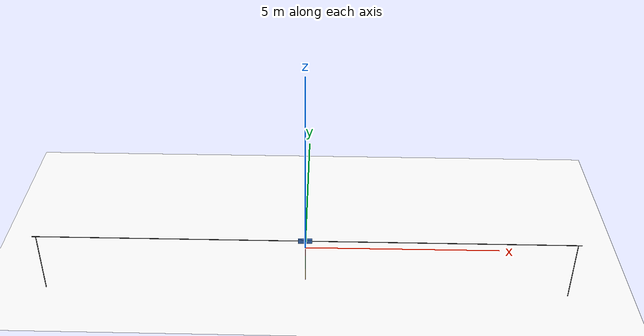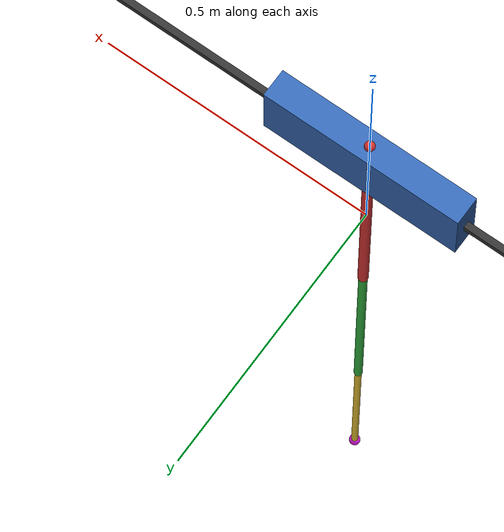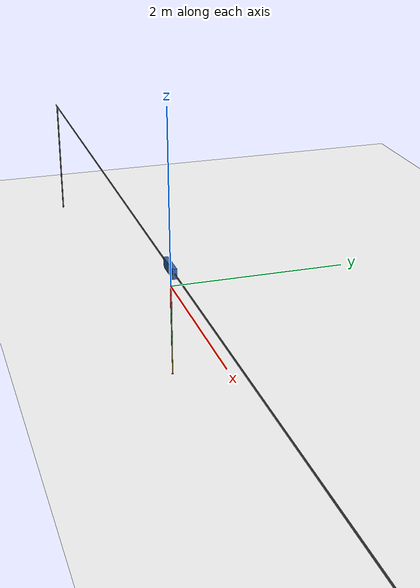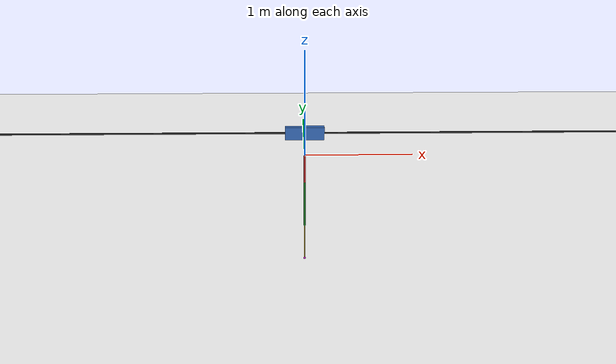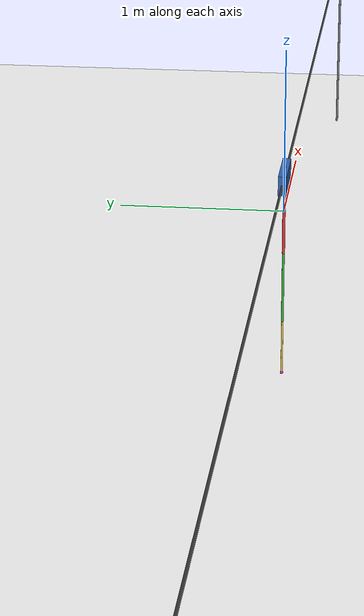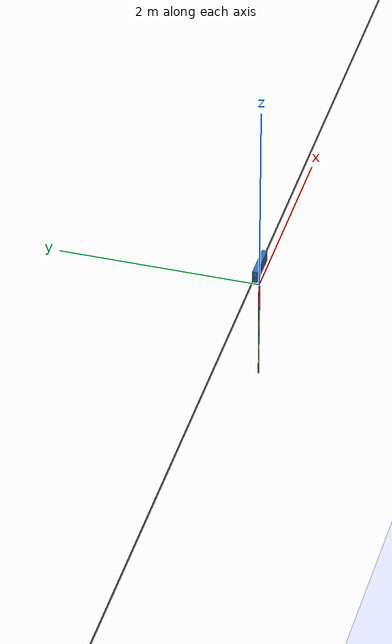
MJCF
<mujoco model="triple_inverted_pendulum">
  <compiler angle="radian" coordinate="local" inertiafromgeom="true"/>
  <option timestep="0.01" gravity="0 0 -9.81" integrator="RK4"/>
  <visual>
    <global offwidth="1280" offheight="960"/>
  </visual>

  <default>
    <geom friction="0.0 0.0 0.0" density="250" contype="0" conaffinity="0"/>
    <default class="slider_joint">
      <joint damping="0.05" armature="0.005" frictionloss="0.002"/>
    </default>
    <default class="hinge_joint">
      <joint damping="0.10" armature="0.006" frictionloss="0.002"/>
    </default>
  </default>

  <worldbody>
    <light diffuse="0.95 0.95 0.95" pos="0 -4 5" dir="0 1 -1"/>
    <geom name="bg" type="plane" pos="0 0 -1.5" size="12 12 0.1" rgba="0.98 0.98 0.98 1"/>
    <geom name="rail" type="box" pos="0 0 0.22" size="7.1 0.006 0.006" rgba="0.2 0.2 0.2 1" mass="0.001"/>
    <geom name="rail_post_l" type="capsule" fromto="-7.0 0 -1.5 -7.0 0 0.22" size="0.01" rgba="0.45 0.45 0.45 1" mass="0.001"/>
    <geom name="rail_post_r" type="capsule" fromto="7.0 0 -1.5 7.0 0 0.22" size="0.01" rgba="0.45 0.45 0.45 1" mass="0.001"/>
    <camera name="side_2d" pos="0 -12.0 -0.05" xyaxes="1 0 0 0 0 1" fovy="36"/>

    <body name="cart" pos="0 0 0.22">
      <joint name="slider" class="slider_joint" type="slide" axis="1 0 0" range="-6.0 6.0"/>
      <geom name="cart_geom" type="box" size="0.18 0.025 0.06" rgba="0.2 0.4 0.7 1" mass="1.2"/>

      <body name="link1" pos="0 0 0.06">
        <joint name="hinge1" class="hinge_joint" type="hinge" axis="0 1 0" range="-3.1416 3.1416"/>
        <geom name="link1_geom" type="capsule" fromto="0 0 0 0 0 -0.55" size="0.009" rgba="0.85 0.2 0.2 1" mass="0.60"/>

        <body name="link2" pos="0 0 -0.55">
          <joint
            name="hinge2"
            class="hinge_joint"
            type="hinge"
            axis="0 1 0"
            range="-3.1416 3.1416"
            damping="0.06"
            armature="0.004"
            frictionloss="0.0015"
          />
          <geom name="link2_geom" type="capsule" fromto="0 0 0 0 0 -0.45" size="0.0075" rgba="0.2 0.7 0.25 1" mass="0.40"/>

          <body name="link3" pos="0 0 -0.45">
            <joint
              name="hinge3"
              class="hinge_joint"
              type="hinge"
              axis="0 1 0"
              range="-3.1416 3.1416"
              damping="0.04"
              armature="0.003"
              frictionloss="0.001"
            />
            <geom name="link3_geom" type="capsule" fromto="0 0 0 0 0 -0.35" size="0.006" rgba="0.9 0.75 0.2 1" mass="0.25"/>
            <site name="tip" pos="0 0 -0.35" size="0.01" rgba="0.9 0.1 0.9 1"/>
          </body>
        </body>
      </body>
    </body>
  </worldbody>

  <actuator>
    <motor name="cart_force" joint="slider" gear="220" ctrlrange="-1 1"/>
  </actuator>
</mujoco>
